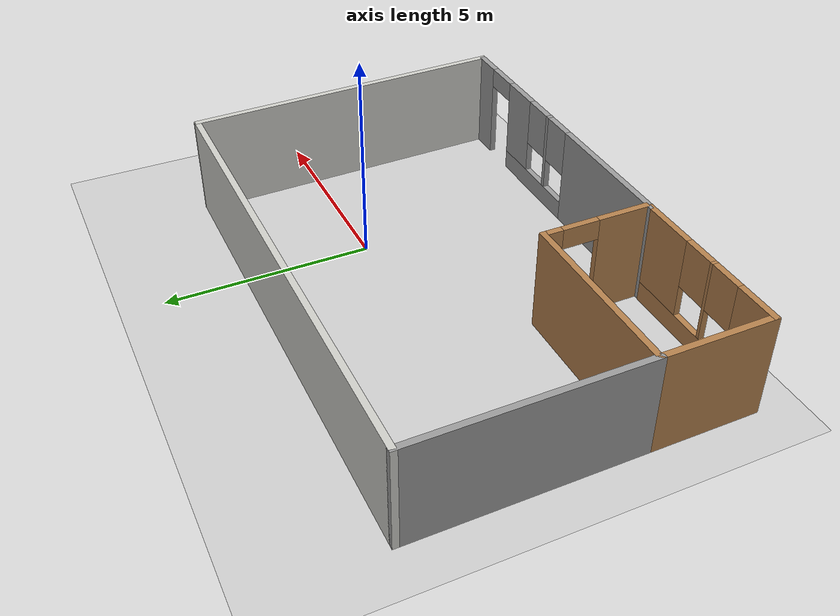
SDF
<sdf version="1.6">
 <world name="default">
  <model name="ground_plane">
   <static>1</static>
   <link name="link">
    <collision name="collision">
     <geometry><plane><normal>0 0 1</normal><size>100 100</size></plane></geometry>
     <surface><friction><ode><mu>100</mu><mu2>50</mu2></ode></friction></surface>
    </collision>
    <visual name="visual">
     <cast_shadows>0</cast_shadows>
     <geometry><plane><normal>0 0 1</normal><size>100 100</size></plane></geometry>
     <material>
      <script><uri>file://media/materials/scripts/gazebo.material</uri><name>Gazebo/Grey</name></script>
     </material>
    </visual>
   </link>
  </model>
  <model name="room">
   <pose>-2.43501 -0.99743 0 0 -0 0</pose>
   <link name="Wall_0">
    <collision name="Wall_0_Collision">
     <geometry><box><size>11.97 0.15 2.5</size></box></geometry>
     <pose>0 0 1.25 0 -0 0</pose>
    </collision>
    <visual name="Wall_0_Visual">
     <pose>0 0 1.25 0 -0 0</pose>
     <geometry><box><size>11.97 0.15 2.5</size></box></geometry>
     <material>
      <script><uri>file://media/materials/scripts/gazebo.material</uri><name>Gazebo/CeilingTiled</name></script>
      <ambient>1 1 1 1</ambient>
     </material>
     <meta><layer>0</layer></meta>
    </visual>
    <pose>-0.097397 3.97419 0 0 -0 0</pose>
   </link>
   <link name="Wall_1">
    <collision name="Wall_1_Collision">
     <geometry><box><size>8.1 0.15 2.5</size></box></geometry>
     <pose>0 0 1.25 0 -0 0</pose>
    </collision>
    <visual name="Wall_1_Visual">
     <pose>0 0 1.25 0 -0 0</pose>
     <geometry><box><size>8.1 0.15 2.5</size></box></geometry>
     <material>
      <script><uri>file://media/materials/scripts/gazebo.material</uri><name>Gazebo/CeilingTiled</name></script>
      <ambient>1 1 1 1</ambient>
     </material>
     <meta><layer>0</layer></meta>
    </visual>
    <pose>5.9091 0.000186 0 0 0 -1.54652</pose>
   </link>
   <link name="Wall_21">
    <collision name="Wall_21_Collision">
     <geometry><box><size>5.5 0.15 2.5</size></box></geometry>
     <pose>0 0 1.25 0 -0 0</pose>
    </collision>
    <visual name="Wall_21_Visual">
     <pose>0 0 1.25 0 -0 0</pose>
     <geometry><box><size>5.5 0.15 2.5</size></box></geometry>
     <material>
      <script><uri>file://media/materials/scripts/gazebo.material</uri><name>Gazebo/Grey</name></script>
      <ambient>1 1 1 1</ambient>
     </material>
     <meta><layer>0</layer></meta>
    </visual>
    <pose>-6.0074 1.29919 0 0 0 -1.5708</pose>
   </link>
   <link name="Wall_22">
    <collision name="Wall_22_Collision">
     <geometry><box><size>2.75 0.15 2.5</size></box></geometry>
     <pose>0 0 1.25 0 -0 0</pose>
    </collision>
    <visual name="Wall_22_Visual">
     <pose>0 0 1.25 0 -0 0</pose>
     <geometry><box><size>2.75 0.15 2.5</size></box></geometry>
     <material>
      <script><uri>file://media/materials/scripts/gazebo.material</uri><name>Gazebo/Wood</name></script>
      <ambient>1 1 1 1</ambient>
     </material>
     <meta><layer>0</layer></meta>
    </visual>
    <pose>-6.0074 -2.67581 0 0 0 -1.5708</pose>
   </link>
   <link name="Wall_23">
    <pose>-3.9574 -3.97581 0 0 -0 0</pose>
    <visual name="Wall_23_Visual_0">
     <pose>-1.5675 0 1.25 0 -0 0</pose>
     <geometry><box><size>1.115 0.15 2.5</size></box></geometry>
     <material>
      <script><uri>file://media/materials/scripts/gazebo.material</uri><name>Gazebo/Wood</name></script>
      <ambient>1 1 1 1</ambient>
     </material>
     <meta><layer>0</layer></meta>
    </visual>
    <collision name="Wall_23_Collision_0">
     <geometry><box><size>1.115 0.15 2.5</size></box></geometry>
     <pose>-1.5675 0 1.25 0 -0 0</pose>
    </collision>
    <visual name="Wall_23_Visual_1">
     <pose>0.5575 0 0.25 0 -0 0</pose>
     <geometry><box><size>3.135 0.15 0.5</size></box></geometry>
     <material>
      <script><uri>file://media/materials/scripts/gazebo.material</uri><name>Gazebo/Wood</name></script>
      <ambient>1 1 1 1</ambient>
     </material>
     <meta><layer>0</layer></meta>
    </visual>
    <collision name="Wall_23_Collision_1">
     <geometry><box><size>3.135 0.15 0.5</size></box></geometry>
     <pose>0.5575 0 0.25 0 -0 0</pose>
    </collision>
    <visual name="Wall_23_Visual_2">
     <pose>-0.17 0 1.5 0 -0 0</pose>
     <geometry><box><size>0.079999 0.15 2</size></box></geometry>
     <material>
      <script><uri>file://media/materials/scripts/gazebo.material</uri><name>Gazebo/Wood</name></script>
      <ambient>1 1 1 1</ambient>
     </material>
     <meta><layer>0</layer></meta>
    </visual>
    <collision name="Wall_23_Collision_2">
     <geometry><box><size>0.079999 0.15 2</size></box></geometry>
     <pose>-0.17 0 1.5 0 -0 0</pose>
    </collision>
    <visual name="Wall_23_Visual_3">
     <pose>1.3975 0 1.5 0 -0 0</pose>
     <geometry><box><size>1.455 0.15 2</size></box></geometry>
     <material>
      <script><uri>file://media/materials/scripts/gazebo.material</uri><name>Gazebo/Wood</name></script>
      <ambient>1 1 1 1</ambient>
     </material>
     <meta><layer>0</layer></meta>
    </visual>
    <collision name="Wall_23_Collision_3">
     <geometry><box><size>1.455 0.15 2</size></box></geometry>
     <pose>1.3975 0 1.5 0 -0 0</pose>
    </collision>
    <visual name="Wall_23_Visual_4">
     <pose>-0.61 0 1.9 0 -0 0</pose>
     <geometry><box><size>0.8 0.15 1.2</size></box></geometry>
     <material>
      <script><uri>file://media/materials/scripts/gazebo.material</uri><name>Gazebo/Wood</name></script>
      <ambient>1 1 1 1</ambient>
     </material>
     <meta><layer>0</layer></meta>
    </visual>
    <collision name="Wall_23_Collision_4">
     <geometry><box><size>0.8 0.15 1.2</size></box></geometry>
     <pose>-0.61 0 1.9 0 -0 0</pose>
    </collision>
    <visual name="Wall_23_Visual_5">
     <pose>0.27 0 1.9 0 -0 0</pose>
     <geometry><box><size>0.8 0.15 1.2</size></box></geometry>
     <material>
      <script><uri>file://media/materials/scripts/gazebo.material</uri><name>Gazebo/Wood</name></script>
      <ambient>1 1 1 1</ambient>
     </material>
     <meta><layer>0</layer></meta>
    </visual>
    <collision name="Wall_23_Collision_5">
     <geometry><box><size>0.8 0.15 1.2</size></box></geometry>
     <pose>0.27 0 1.9 0 -0 0</pose>
    </collision>
   </link>
   <link name="Wall_24">
    <pose>2.0176 -3.97581 0 0 -0 0</pose>
    <visual name="Wall_24_Visual_0">
     <pose>-2.2225 0 1.25 0 -0 0</pose>
     <geometry><box><size>3.555 0.15 2.5</size></box></geometry>
     <material>
      <script><uri>file://media/materials/scripts/gazebo.material</uri><name>Gazebo/Grey</name></script>
      <ambient>1 1 1 1</ambient>
     </material>
     <meta><layer>0</layer></meta>
    </visual>
    <collision name="Wall_24_Collision_0">
     <geometry><box><size>3.555 0.15 2.5</size></box></geometry>
     <pose>-2.2225 0 1.25 0 -0 0</pose>
    </collision>
    <visual name="Wall_24_Visual_1">
     <pose>3.6125 0 1.25 0 -0 0</pose>
     <geometry><box><size>0.775 0.15 2.5</size></box></geometry>
     <material>
      <script><uri>file://media/materials/scripts/gazebo.material</uri><name>Gazebo/Grey</name></script>
      <ambient>1 1 1 1</ambient>
     </material>
     <meta><layer>0</layer></meta>
    </visual>
    <collision name="Wall_24_Collision_1">
     <geometry><box><size>0.775 0.15 2.5</size></box></geometry>
     <pose>3.6125 0 1.25 0 -0 0</pose>
    </collision>
    <visual name="Wall_24_Visual_2">
     <pose>0.94 0 0.25 0 -0 0</pose>
     <geometry><box><size>2.77 0.15 0.5</size></box></geometry>
     <material>
      <script><uri>file://media/materials/scripts/gazebo.material</uri><name>Gazebo/Grey</name></script>
      <ambient>1 1 1 1</ambient>
     </material>
     <meta><layer>0</layer></meta>
    </visual>
    <collision name="Wall_24_Collision_2">
     <geometry><box><size>2.77 0.15 0.5</size></box></geometry>
     <pose>0.94 0 0.25 0 -0 0</pose>
    </collision>
    <visual name="Wall_24_Visual_3">
     <pose>0.41 0 1.5 0 -0 0</pose>
     <geometry><box><size>0.11 0.15 2</size></box></geometry>
     <material>
      <script><uri>file://media/materials/scripts/gazebo.material</uri><name>Gazebo/Grey</name></script>
      <ambient>1 1 1 1</ambient>
     </material>
     <meta><layer>0</layer></meta>
    </visual>
    <collision name="Wall_24_Collision_3">
     <geometry><box><size>0.11 0.15 2</size></box></geometry>
     <pose>0.41 0 1.5 0 -0 0</pose>
    </collision>
    <visual name="Wall_24_Visual_4">
     <pose>1.795 0 1.5 0 -0 0</pose>
     <geometry><box><size>1.06 0.15 2</size></box></geometry>
     <material>
      <script><uri>file://media/materials/scripts/gazebo.material</uri><name>Gazebo/Grey</name></script>
      <ambient>1 1 1 1</ambient>
     </material>
     <meta><layer>0</layer></meta>
    </visual>
    <collision name="Wall_24_Collision_4">
     <geometry><box><size>1.06 0.15 2</size></box></geometry>
     <pose>1.795 0 1.5 0 -0 0</pose>
    </collision>
    <visual name="Wall_24_Visual_5">
     <pose>-0.045 0 1.9 0 -0 0</pose>
     <geometry><box><size>0.8 0.15 1.2</size></box></geometry>
     <material>
      <script><uri>file://media/materials/scripts/gazebo.material</uri><name>Gazebo/Grey</name></script>
      <ambient>1 1 1 1</ambient>
     </material>
     <meta><layer>0</layer></meta>
    </visual>
    <collision name="Wall_24_Collision_5">
     <geometry><box><size>0.8 0.15 1.2</size></box></geometry>
     <pose>-0.045 0 1.9 0 -0 0</pose>
    </collision>
    <visual name="Wall_24_Visual_6">
     <pose>0.865 0 1.9 0 -0 0</pose>
     <geometry><box><size>0.8 0.15 1.2</size></box></geometry>
     <material>
      <script><uri>file://media/materials/scripts/gazebo.material</uri><name>Gazebo/Grey</name></script>
      <ambient>1 1 1 1</ambient>
     </material>
     <meta><layer>0</layer></meta>
    </visual>
    <collision name="Wall_24_Collision_6">
     <geometry><box><size>0.8 0.15 1.2</size></box></geometry>
     <pose>0.865 0 1.9 0 -0 0</pose>
    </collision>
    <visual name="Wall_24_Visual_7">
     <pose>2.775 0 2.25 0 -0 0</pose>
     <geometry><box><size>0.9 0.15 0.5</size></box></geometry>
     <material>
      <script><uri>file://media/materials/scripts/gazebo.material</uri><name>Gazebo/Grey</name></script>
      <ambient>1 1 1 1</ambient>
     </material>
     <meta><layer>0</layer></meta>
    </visual>
    <collision name="Wall_24_Collision_7">
     <geometry><box><size>0.9 0.15 0.5</size></box></geometry>
     <pose>2.775 0 2.25 0 -0 0</pose>
    </collision>
   </link>
   <link name="Wall_5">
    <collision name="Wall_5_Collision">
     <geometry><box><size>4.25 0.15 2.5</size></box></geometry>
     <pose>0 0 1.25 0 -0 0</pose>
    </collision>
    <visual name="Wall_5_Visual">
     <pose>0 0 1.25 0 -0 0</pose>
     <geometry><box><size>4.25 0.15 2.5</size></box></geometry>
     <material>
      <script><uri>file://media/materials/scripts/gazebo.material</uri><name>Gazebo/Wood</name></script>
      <ambient>1 1 1 1</ambient>
     </material>
     <meta><layer>0</layer></meta>
    </visual>
    <pose>-3.8574 -1.34581 0 0 -0 0</pose>
   </link>
   <link name="Wall_6">
    <pose>-1.8074 -2.62081 0 0 0 -1.5708</pose>
    <visual name="Wall_6_Visual_0">
     <pose>-1.0925 0 1.25 0 -0 0</pose>
     <geometry><box><size>0.515 0.15 2.5</size></box></geometry>
     <material>
      <script><uri>file://media/materials/scripts/gazebo.material</uri><name>Gazebo/Wood</name></script>
      <ambient>1 1 1 1</ambient>
     </material>
     <meta><layer>0</layer></meta>
    </visual>
    <collision name="Wall_6_Collision_0">
     <geometry><box><size>0.515 0.15 2.5</size></box></geometry>
     <pose>-1.0925 0 1.25 0 -0 0</pose>
    </collision>
    <visual name="Wall_6_Visual_1">
     <pose>0.7075 0 1.25 0 -0 0</pose>
     <geometry><box><size>1.285 0.15 2.5</size></box></geometry>
     <material>
      <script><uri>file://media/materials/scripts/gazebo.material</uri><name>Gazebo/Wood</name></script>
      <ambient>1 1 1 1</ambient>
     </material>
     <meta><layer>0</layer></meta>
    </visual>
    <collision name="Wall_6_Collision_1">
     <geometry><box><size>1.285 0.15 2.5</size></box></geometry>
     <pose>0.7075 0 1.25 0 -0 0</pose>
    </collision>
    <visual name="Wall_6_Visual_2">
     <pose>-0.385 0 2.25 0 -0 0</pose>
     <geometry><box><size>0.9 0.15 0.5</size></box></geometry>
     <material>
      <script><uri>file://media/materials/scripts/gazebo.material</uri><name>Gazebo/Wood</name></script>
      <ambient>1 1 1 1</ambient>
     </material>
     <meta><layer>0</layer></meta>
    </visual>
    <collision name="Wall_6_Collision_2">
     <geometry><box><size>0.9 0.15 0.5</size></box></geometry>
     <pose>-0.385 0 2.25 0 -0 0</pose>
    </collision>
   </link>
   <static>1</static>
  </model>
  <model name="bookshelf">
   <static>1</static>
   <link name="link">
    <inertial><mass>1</mass></inertial>
    <collision name="back">
     <pose>0 0.005 0.6 0 -0 0</pose>
     <geometry><box><size>0.9 0.01 1.2</size></box></geometry>
    </collision>
    <visual name="visual1">
     <pose>0 0.005 0.6 0 -0 0</pose>
     <geometry><box><size>0.9 0.01 1.2</size></box></geometry>
     <material>
      <script><uri>file://media/materials/scripts/gazebo.material</uri><name>Gazebo/Wood</name></script>
     </material>
    </visual>
    <collision name="left_side">
     <pose>0.45 -0.195 0.6 0 -0 0</pose>
     <geometry><box><size>0.02 0.4 1.2</size></box></geometry>
    </collision>
    <visual name="visual2">
     <pose>0.45 -0.195 0.6 0 -0 0</pose>
     <geometry><box><size>0.02 0.4 1.2</size></box></geometry>
     <material>
      <script><uri>file://media/materials/scripts/gazebo.material</uri><name>Gazebo/Wood</name></script>
     </material>
    </visual>
    <collision name="right_side">
     <pose>-0.45 -0.195 0.6 0 -0 0</pose>
     <geometry><box><size>0.02 0.4 1.2</size></box></geometry>
    </collision>
    <visual name="visual3">
     <pose>-0.45 -0.195 0.6 0 -0 0</pose>
     <geometry><box><size>0.02 0.4 1.2</size></box></geometry>
     <material>
      <script><uri>file://media/materials/scripts/gazebo.material</uri><name>Gazebo/Wood</name></script>
     </material>
    </visual>
    <collision name="bottom">
     <pose>0 -0.195 0.03 0 -0 0</pose>
     <geometry><box><size>0.88 0.4 0.06</size></box></geometry>
    </collision>
    <visual name="visual4">
     <pose>0 -0.195 0.03 0 -0 0</pose>
     <geometry><box><size>0.88 0.4 0.06</size></box></geometry>
     <material>
      <script><uri>file://media/materials/scripts/gazebo.material</uri><name>Gazebo/Wood</name></script>
     </material>
    </visual>
    <collision name="top">
     <pose>0 -0.195 1.19 0 -0 0</pose>
     <geometry><box><size>0.88 0.4 0.02</size></box></geometry>
    </collision>
    <visual name="visual5">
     <pose>0 -0.195 1.19 0 -0 0</pose>
     <geometry><box><size>0.88 0.4 0.02</size></box></geometry>
     <material>
      <script><uri>file://media/materials/scripts/gazebo.material</uri><name>Gazebo/Wood</name></script>
     </material>
    </visual>
    <collision name="low_shelf">
     <pose>0 -0.195 0.43 0 -0 0</pose>
     <geometry><box><size>0.88 0.4 0.02</size></box></geometry>
    </collision>
    <visual name="visual6">
     <pose>0 -0.195 0.43 0 -0 0</pose>
     <geometry><box><size>0.88 0.4 0.02</size></box></geometry>
     <material>
      <script><uri>file://media/materials/scripts/gazebo.material</uri><name>Gazebo/Wood</name></script>
     </material>
    </visual>
    <collision name="high_shelf">
     <pose>0 -0.195 0.8 0 -0 0</pose>
     <geometry><box><size>0.88 0.4 0.02</size></box></geometry>
    </collision>
    <visual name="visual7">
     <pose>0 -0.195 0.8 0 -0 0</pose>
     <geometry><box><size>0.88 0.4 0.02</size></box></geometry>
     <material>
      <script><uri>file://media/materials/scripts/gazebo.material</uri><name>Gazebo/Wood</name></script>
     </material>
    </visual>
   </link>
   <pose>-7.91566 2.98462 0 0 -0 0</pose>
  </model>
 </world>
</sdf>
